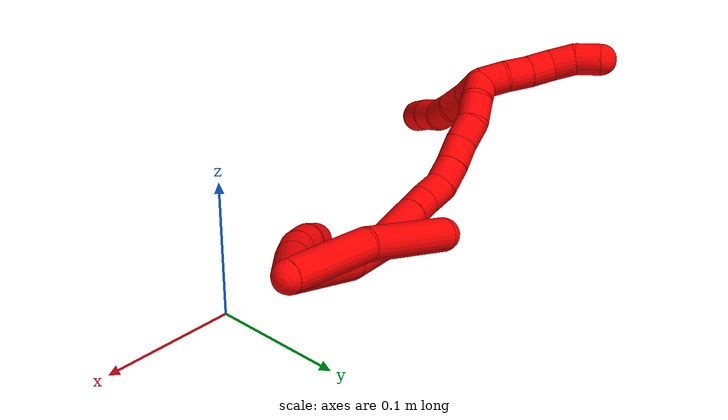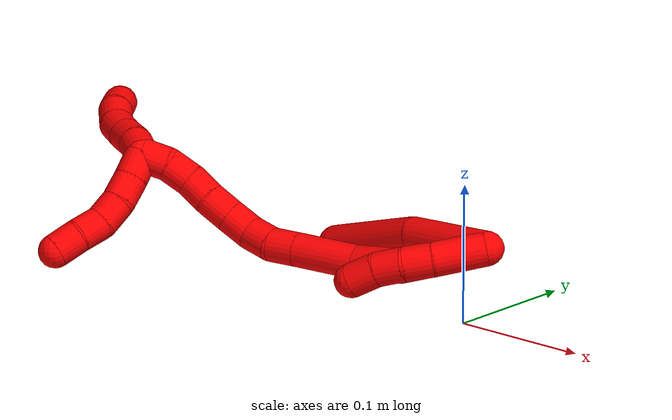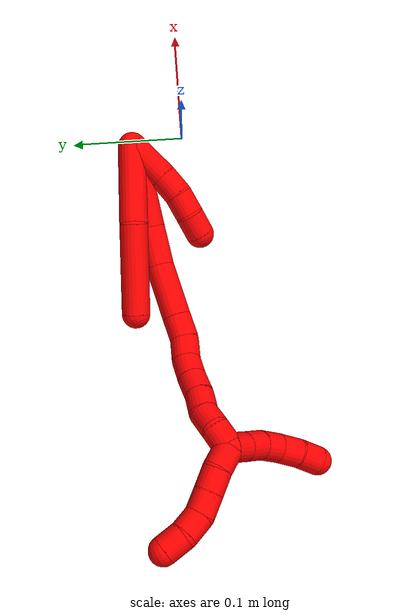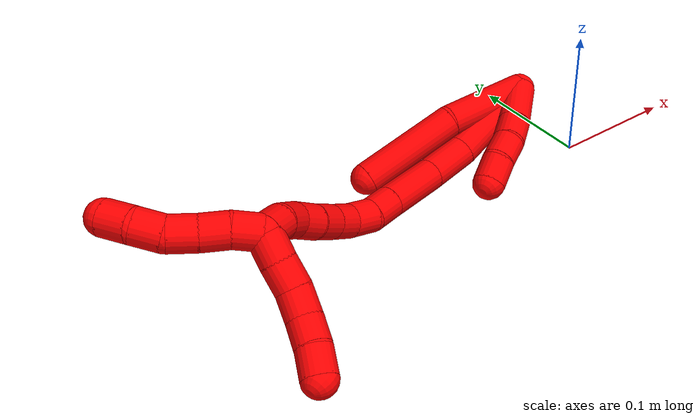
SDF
<sdf version="1.7">
 <world name="default">
  <model name="photoneo_s_sensor">
   <static>1</static>
   <pose>0 0 2 1.57079 1.57079 3.14159</pose>
   <link name="link">
    <inertial><mass>0.1</mass></inertial>
    <sensor name="sensor" type="depth">
     <update_rate>30</update_rate>
     <camera>
      <horizontal_fov>1.22</horizontal_fov>
      <image><width>1920</width><height>1200</height><format>B8G8R8</format></image>
      <clip><near>0.1</near><far>4</far></clip>
      <depth_camera><output>points</output></depth_camera>
     </camera>
     <plugin name="camera_plugin" filename="libgazebo_ros_depth_camera.so">
      <baseline>0.2</baseline>
      <alwaysOn>1</alwaysOn>
      <updateRate>0.0</updateRate>
      <cameraName>camera_ir</cameraName>
      <imageTopicName>/camera/color/image_raw</imageTopicName>
      <cameraInfoTopicName>/camera/color/camera_info</cameraInfoTopicName>
      <depthImageTopicName>/camera/depth/image_raw</depthImageTopicName>
      <depthImageCameraInfoTopicName>/camera/depth/camera_info</depthImageCameraInfoTopicName>
      <pointCloudTopicName>/camera/depth/points</pointCloudTopicName>
      <frameName>fr_optical</frameName>
      <pointCloudCutoff>0.1</pointCloudCutoff>
      <pointCloudCutoffMax>2.0</pointCloudCutoffMax>
      <distortionK1>0</distortionK1>
      <distortionK2>0</distortionK2>
      <distortionK3>0</distortionK3>
      <distortionT1>0</distortionT1>
      <distortionT2>0</distortionT2>
      <CxPrime>0</CxPrime>
      <Cx>0</Cx>
      <Cy>0</Cy>
      <focalLength>0</focalLength>
      <hackBaseline>0</hackBaseline>
     </plugin>
    </sensor>
   </link>
  </model>
  <model name="bin">
   <static>1</static>
   <link name="bottom">
    <collision name="collision-bottom">
     <pose>0 0 -0.01 0 -0 0</pose>
     <geometry><box><size>0.8 0.6 0.02</size></box></geometry>
     <surface>
      <friction><ode><mu>100</mu><mu2>100</mu2></ode></friction>
      <contact><collide_bitmask>65535</collide_bitmask></contact>
     </surface>
    </collision>
   </link>
   <link name="west_wall">
    <collision name="collision-west_wall">
     <pose>-0.41 0 0.1 0 -0 0</pose>
     <geometry><box><size>0.02 0.6 0.2</size></box></geometry>
     <surface>
      <friction><ode><mu>100</mu><mu2>100</mu2></ode></friction>
      <contact><collide_bitmask>65535</collide_bitmask></contact>
     </surface>
    </collision>
   </link>
   <link name="east_wall">
    <collision name="collision-east_wall">
     <pose>0.41 0 0.1 0 -0 0</pose>
     <geometry><box><size>0.02 0.6 0.2</size></box></geometry>
     <surface>
      <friction><ode><mu>100</mu><mu2>100</mu2></ode></friction>
      <contact><collide_bitmask>65535</collide_bitmask></contact>
     </surface>
    </collision>
   </link>
   <link name="south_wall">
    <collision name="collision-south_wall">
     <pose>0 -0.31 0.1 0 -0 0</pose>
     <geometry><box><size>0.8 0.02 0.2</size></box></geometry>
     <surface>
      <friction><ode><mu>100</mu><mu2>100</mu2></ode></friction>
      <contact><collide_bitmask>65535</collide_bitmask></contact>
     </surface>
    </collision>
   </link>
   <link name="north_wall">
    <collision name="collision-north_wall">
     <pose>0 0.31 0.1 0 -0 0</pose>
     <geometry><box><size>0.8 0.02 0.2</size></box></geometry>
     <surface>
      <friction><ode><mu>100</mu><mu2>100</mu2></ode></friction>
      <contact><collide_bitmask>65535</collide_bitmask></contact>
     </surface>
    </collision>
   </link>
  </model>
  <model name="2">
   <static>0</static>
   <link name="2">
    <collision name="collision-cylinder-e_1_2_8">
     <pose>-0.013274 0.008814 0.03118 -0.275487 -0.388816 0.054574</pose>
     <geometry><cylinder><radius>0.0125</radius><length>0.07003</length></cylinder></geometry>
     <surface>
      <friction><ode><mu>1.16</mu><mu2>1.16</mu2><slip1>0</slip1><slip2>0</slip2></ode></friction>
      <contact><ode><kp>1e+06</kp><kd>1</kd><max_vel>0</max_vel><min_depth>0.001</min_depth></ode></contact>
     </surface>
    </collision>
    <visual name="visual-cylinder-e_1_2_8">
     <pose>-0.013274 0.008814 0.03118 -0.275487 -0.388816 0.054574</pose>
     <geometry><cylinder><radius>0.0125</radius><length>0.07003</length></cylinder></geometry>
     <material><ambient>1 0 0 1</ambient></material>
    </visual>
    <collision name="collision-cylinder-e_2_8_6">
     <pose>-0.045615 0.019459 0.097458 -0.052141 -0.497082 0.013236</pose>
     <geometry><cylinder><radius>0.0125</radius><length>0.07997</length></cylinder></geometry>
     <surface>
      <friction><ode><mu>1.16</mu><mu2>1.16</mu2><slip1>0</slip1><slip2>0</slip2></ode></friction>
      <contact><ode><kp>1e+06</kp><kd>1</kd><max_vel>0</max_vel><min_depth>0.001</min_depth></ode></contact>
     </surface>
    </collision>
    <visual name="visual-cylinder-e_2_8_6">
     <pose>-0.045615 0.019459 0.097458 -0.052141 -0.497082 0.013236</pose>
     <geometry><cylinder><radius>0.0125</radius><length>0.07997</length></cylinder></geometry>
     <material><ambient>1 0 0 1</ambient></material>
    </visual>
    <collision name="collision-cylinder-e_1_2_9">
     <pose>0.003988 -0.004711 0.018013 0.255822 0.210982 0.027235</pose>
     <geometry><cylinder><radius>0.0125</radius><length>0.038083</length></cylinder></geometry>
     <surface>
      <friction><ode><mu>1.16</mu><mu2>1.16</mu2><slip1>0</slip1><slip2>0</slip2></ode></friction>
      <contact><ode><kp>1e+06</kp><kd>1</kd><max_vel>0</max_vel><min_depth>0.001</min_depth></ode></contact>
     </surface>
    </collision>
    <visual name="visual-cylinder-e_1_2_9">
     <pose>0.003988 -0.004711 0.018013 0.255822 0.210982 0.027235</pose>
     <geometry><cylinder><radius>0.0125</radius><length>0.038083</length></cylinder></geometry>
     <material><ambient>1 0 0 1</ambient></material>
    </visual>
    <collision name="collision-cylinder-e_2_9_10">
     <pose>0.009513 -0.011331 0.046253 0.184424 0.146737 0.013594</pose>
     <geometry><cylinder><radius>0.0125</radius><length>0.021033</length></cylinder></geometry>
     <surface>
      <friction><ode><mu>1.16</mu><mu2>1.16</mu2><slip1>0</slip1><slip2>0</slip2></ode></friction>
      <contact><ode><kp>1e+06</kp><kd>1</kd><max_vel>0</max_vel><min_depth>0.001</min_depth></ode></contact>
     </surface>
    </collision>
    <visual name="visual-cylinder-e_2_9_10">
     <pose>0.009513 -0.011331 0.046253 0.184424 0.146737 0.013594</pose>
     <geometry><cylinder><radius>0.0125</radius><length>0.021033</length></cylinder></geometry>
     <material><ambient>1 0 0 1</ambient></material>
    </visual>
    <collision name="collision-cylinder-e_3_10_11">
     <pose>0.01051 -0.014886 0.066427 0.16413 -0.053608 -0.00441</pose>
     <geometry><cylinder><radius>0.0125</radius><length>0.020193</length></cylinder></geometry>
     <surface>
      <friction><ode><mu>1.16</mu><mu2>1.16</mu2><slip1>0</slip1><slip2>0</slip2></ode></friction>
      <contact><ode><kp>1e+06</kp><kd>1</kd><max_vel>0</max_vel><min_depth>0.001</min_depth></ode></contact>
     </surface>
    </collision>
    <visual name="visual-cylinder-e_3_10_11">
     <pose>0.01051 -0.014886 0.066427 0.16413 -0.053608 -0.00441</pose>
     <geometry><cylinder><radius>0.0125</radius><length>0.020193</length></cylinder></geometry>
     <material><ambient>1 0 0 1</ambient></material>
    </visual>
    <collision name="collision-cylinder-e_4_11_5">
     <pose>0.00854 -0.020069 0.085991 0.352335 -0.138535 -0.024699</pose>
     <geometry><cylinder><radius>0.0125</radius><length>0.020691</length></cylinder></geometry>
     <surface>
      <friction><ode><mu>1.16</mu><mu2>1.16</mu2><slip1>0</slip1><slip2>0</slip2></ode></friction>
      <contact><ode><kp>1e+06</kp><kd>1</kd><max_vel>0</max_vel><min_depth>0.001</min_depth></ode></contact>
     </surface>
    </collision>
    <visual name="visual-cylinder-e_4_11_5">
     <pose>0.00854 -0.020069 0.085991 0.352335 -0.138535 -0.024699</pose>
     <geometry><cylinder><radius>0.0125</radius><length>0.020691</length></cylinder></geometry>
     <material><ambient>1 0 0 1</ambient></material>
    </visual>
    <collision name="collision-cylinder-e_1_2_12">
     <pose>-0.012213 -0.003079 0.034733 0.08842 -0.336898 -0.015046</pose>
     <geometry><cylinder><radius>0.0125</radius><length>0.073893</length></cylinder></geometry>
     <surface>
      <friction><ode><mu>1.16</mu><mu2>1.16</mu2><slip1>0</slip1><slip2>0</slip2></ode></friction>
      <contact><ode><kp>1e+06</kp><kd>1</kd><max_vel>0</max_vel><min_depth>0.001</min_depth></ode></contact>
     </surface>
    </collision>
    <visual name="visual-cylinder-e_1_2_12">
     <pose>-0.012213 -0.003079 0.034733 0.08842 -0.336898 -0.015046</pose>
     <geometry><cylinder><radius>0.0125</radius><length>0.073893</length></cylinder></geometry>
     <material><ambient>1 0 0 1</ambient></material>
    </visual>
    <collision name="collision-cylinder-e_2_12_13">
     <pose>-0.028516 -0.003731 0.087179 -0.136203 -0.224905 0.015405</pose>
     <geometry><cylinder><radius>0.0125</radius><length>0.03668</length></cylinder></geometry>
     <surface>
      <friction><ode><mu>1.16</mu><mu2>1.16</mu2><slip1>0</slip1><slip2>0</slip2></ode></friction>
      <contact><ode><kp>1e+06</kp><kd>1</kd><max_vel>0</max_vel><min_depth>0.001</min_depth></ode></contact>
     </surface>
    </collision>
    <visual name="visual-cylinder-e_2_12_13">
     <pose>-0.028516 -0.003731 0.087179 -0.136203 -0.224905 0.015405</pose>
     <geometry><cylinder><radius>0.0125</radius><length>0.03668</length></cylinder></geometry>
     <material><ambient>1 0 0 1</ambient></material>
    </visual>
    <collision name="collision-cylinder-e_3_13_14">
     <pose>-0.034579 0.004096 0.128242 -0.227236 -0.082148 0.009379</pose>
     <geometry><cylinder><radius>0.0125</radius><length>0.048094</length></cylinder></geometry>
     <surface>
      <friction><ode><mu>1.16</mu><mu2>1.16</mu2><slip1>0</slip1><slip2>0</slip2></ode></friction>
      <contact><ode><kp>1e+06</kp><kd>1</kd><max_vel>0</max_vel><min_depth>0.001</min_depth></ode></contact>
     </surface>
    </collision>
    <visual name="visual-cylinder-e_3_13_14">
     <pose>-0.034579 0.004096 0.128242 -0.227236 -0.082148 0.009379</pose>
     <geometry><cylinder><radius>0.0125</radius><length>0.048094</length></cylinder></geometry>
     <material><ambient>1 0 0 1</ambient></material>
    </visual>
    <collision name="collision-cylinder-e_4_14_15">
     <pose>-0.037317 0.011676 0.16175 -0.211443 -0.073456 0.007798</pose>
     <geometry><cylinder><radius>0.0125</radius><length>0.020836</length></cylinder></geometry>
     <surface>
      <friction><ode><mu>1.16</mu><mu2>1.16</mu2><slip1>0</slip1><slip2>0</slip2></ode></friction>
      <contact><ode><kp>1e+06</kp><kd>1</kd><max_vel>0</max_vel><min_depth>0.001</min_depth></ode></contact>
     </surface>
    </collision>
    <visual name="visual-cylinder-e_4_14_15">
     <pose>-0.037317 0.011676 0.16175 -0.211443 -0.073456 0.007798</pose>
     <geometry><cylinder><radius>0.0125</radius><length>0.020836</length></cylinder></geometry>
     <material><ambient>1 0 0 1</ambient></material>
    </visual>
    <collision name="collision-cylinder-e_5_15_16">
     <pose>-0.039889 0.018682 0.180648 -0.504565 -0.179072 0.046276</pose>
     <geometry><cylinder><radius>0.0125</radius><length>0.020291</length></cylinder></geometry>
     <surface>
      <friction><ode><mu>1.16</mu><mu2>1.16</mu2><slip1>0</slip1><slip2>0</slip2></ode></friction>
      <contact><ode><kp>1e+06</kp><kd>1</kd><max_vel>0</max_vel><min_depth>0.001</min_depth></ode></contact>
     </surface>
    </collision>
    <visual name="visual-cylinder-e_5_15_16">
     <pose>-0.039889 0.018682 0.180648 -0.504565 -0.179072 0.046276</pose>
     <geometry><cylinder><radius>0.0125</radius><length>0.020291</length></cylinder></geometry>
     <material><ambient>1 0 0 1</ambient></material>
    </visual>
    <collision name="collision-cylinder-e_6_16_17">
     <pose>-0.040365 0.029518 0.197384 -0.644364 0.132247 -0.044203</pose>
     <geometry><cylinder><radius>0.0125</radius><length>0.020183</length></cylinder></geometry>
     <surface>
      <friction><ode><mu>1.16</mu><mu2>1.16</mu2><slip1>0</slip1><slip2>0</slip2></ode></friction>
      <contact><ode><kp>1e+06</kp><kd>1</kd><max_vel>0</max_vel><min_depth>0.001</min_depth></ode></contact>
     </surface>
    </collision>
    <visual name="visual-cylinder-e_6_16_17">
     <pose>-0.040365 0.029518 0.197384 -0.644364 0.132247 -0.044203</pose>
     <geometry><cylinder><radius>0.0125</radius><length>0.020183</length></cylinder></geometry>
     <material><ambient>1 0 0 1</ambient></material>
    </visual>
    <collision name="collision-cylinder-e_7_17_18">
     <pose>-0.036794 0.041581 0.213022 -0.670149 0.225945 -0.07897</pose>
     <geometry><cylinder><radius>0.0125</radius><length>0.020005</length></cylinder></geometry>
     <surface>
      <friction><ode><mu>1.16</mu><mu2>1.16</mu2><slip1>0</slip1><slip2>0</slip2></ode></friction>
      <contact><ode><kp>1e+06</kp><kd>1</kd><max_vel>0</max_vel><min_depth>0.001</min_depth></ode></contact>
     </surface>
    </collision>
    <visual name="visual-cylinder-e_7_17_18">
     <pose>-0.036794 0.041581 0.213022 -0.670149 0.225945 -0.07897</pose>
     <geometry><cylinder><radius>0.0125</radius><length>0.020005</length></cylinder></geometry>
     <material><ambient>1 0 0 1</ambient></material>
    </visual>
    <collision name="collision-cylinder-e_8_18_19">
     <pose>-0.033384 0.054376 0.22796 -0.745643 0.117178 -0.045874</pose>
     <geometry><cylinder><radius>0.0125</radius><length>0.020007</length></cylinder></geometry>
     <surface>
      <friction><ode><mu>1.16</mu><mu2>1.16</mu2><slip1>0</slip1><slip2>0</slip2></ode></friction>
      <contact><ode><kp>1e+06</kp><kd>1</kd><max_vel>0</max_vel><min_depth>0.001</min_depth></ode></contact>
     </surface>
    </collision>
    <visual name="visual-cylinder-e_8_18_19">
     <pose>-0.033384 0.054376 0.22796 -0.745643 0.117178 -0.045874</pose>
     <geometry><cylinder><radius>0.0125</radius><length>0.020007</length></cylinder></geometry>
     <material><ambient>1 0 0 1</ambient></material>
    </visual>
    <collision name="collision-cylinder-e_9_19_20">
     <pose>-0.028403 0.066233 0.242965 -0.586161 0.390813 -0.119318</pose>
     <geometry><cylinder><radius>0.0125</radius><length>0.02001</length></cylinder></geometry>
     <surface>
      <friction><ode><mu>1.16</mu><mu2>1.16</mu2><slip1>0</slip1><slip2>0</slip2></ode></friction>
      <contact><ode><kp>1e+06</kp><kd>1</kd><max_vel>0</max_vel><min_depth>0.001</min_depth></ode></contact>
     </surface>
    </collision>
    <visual name="visual-cylinder-e_9_19_20">
     <pose>-0.028403 0.066233 0.242965 -0.586161 0.390813 -0.119318</pose>
     <geometry><cylinder><radius>0.0125</radius><length>0.02001</length></cylinder></geometry>
     <material><ambient>1 0 0 1</ambient></material>
    </visual>
    <collision name="collision-cylinder-e_10_20_1">
     <pose>-0.021864 0.07423 0.259853 -0.303895 0.276189 -0.042557</pose>
     <geometry><cylinder><radius>0.0125</radius><length>0.020001</length></cylinder></geometry>
     <surface>
      <friction><ode><mu>1.16</mu><mu2>1.16</mu2><slip1>0</slip1><slip2>0</slip2></ode></friction>
      <contact><ode><kp>1e+06</kp><kd>1</kd><max_vel>0</max_vel><min_depth>0.001</min_depth></ode></contact>
     </surface>
    </collision>
    <visual name="visual-cylinder-e_10_20_1">
     <pose>-0.021864 0.07423 0.259853 -0.303895 0.276189 -0.042557</pose>
     <geometry><cylinder><radius>0.0125</radius><length>0.020001</length></cylinder></geometry>
     <material><ambient>1 0 0 1</ambient></material>
    </visual>
    <collision name="collision-cylinder-e_1_1_21">
     <pose>-0.017502 0.067747 0.272144 1.25 0.164296 0.118665</pose>
     <geometry><cylinder><radius>0.0125</radius><length>0.02</length></cylinder></geometry>
     <surface>
      <friction><ode><mu>1.16</mu><mu2>1.16</mu2><slip1>0</slip1><slip2>0</slip2></ode></friction>
      <contact><ode><kp>1e+06</kp><kd>1</kd><max_vel>0</max_vel><min_depth>0.001</min_depth></ode></contact>
     </surface>
    </collision>
    <visual name="visual-cylinder-e_1_1_21">
     <pose>-0.017502 0.067747 0.272144 1.25 0.164296 0.118665</pose>
     <geometry><cylinder><radius>0.0125</radius><length>0.02</length></cylinder></geometry>
     <material><ambient>1 0 0 1</ambient></material>
    </visual>
    <collision name="collision-cylinder-e_2_21_22">
     <pose>-0.013165 0.049285 0.278401 1.23795 0.273495 0.195427</pose>
     <geometry><cylinder><radius>0.0125</radius><length>0.02</length></cylinder></geometry>
     <surface>
      <friction><ode><mu>1.16</mu><mu2>1.16</mu2><slip1>0</slip1><slip2>0</slip2></ode></friction>
      <contact><ode><kp>1e+06</kp><kd>1</kd><max_vel>0</max_vel><min_depth>0.001</min_depth></ode></contact>
     </surface>
    </collision>
    <visual name="visual-cylinder-e_2_21_22">
     <pose>-0.013165 0.049285 0.278401 1.23795 0.273495 0.195427</pose>
     <geometry><cylinder><radius>0.0125</radius><length>0.02</length></cylinder></geometry>
     <material><ambient>1 0 0 1</ambient></material>
    </visual>
    <collision name="collision-cylinder-e_3_22_23">
     <pose>-0.007763 0.031978 0.286581 1.02054 0.273478 0.153727</pose>
     <geometry><cylinder><radius>0.0125</radius><length>0.02</length></cylinder></geometry>
     <surface>
      <friction><ode><mu>1.16</mu><mu2>1.16</mu2><slip1>0</slip1><slip2>0</slip2></ode></friction>
      <contact><ode><kp>1e+06</kp><kd>1</kd><max_vel>0</max_vel><min_depth>0.001</min_depth></ode></contact>
     </surface>
    </collision>
    <visual name="visual-cylinder-e_3_22_23">
     <pose>-0.007763 0.031978 0.286581 1.02054 0.273478 0.153727</pose>
     <geometry><cylinder><radius>0.0125</radius><length>0.02</length></cylinder></geometry>
     <material><ambient>1 0 0 1</ambient></material>
    </visual>
    <collision name="collision-cylinder-e_4_23_24">
     <pose>-0.000325 0.017836 0.298122 0.73953 0.493533 0.194652</pose>
     <geometry><cylinder><radius>0.0125</radius><length>0.02</length></cylinder></geometry>
     <surface>
      <friction><ode><mu>1.16</mu><mu2>1.16</mu2><slip1>0</slip1><slip2>0</slip2></ode></friction>
      <contact><ode><kp>1e+06</kp><kd>1</kd><max_vel>0</max_vel><min_depth>0.001</min_depth></ode></contact>
     </surface>
    </collision>
    <visual name="visual-cylinder-e_4_23_24">
     <pose>-0.000325 0.017836 0.298122 0.73953 0.493533 0.194652</pose>
     <geometry><cylinder><radius>0.0125</radius><length>0.02</length></cylinder></geometry>
     <material><ambient>1 0 0 1</ambient></material>
    </visual>
    <collision name="collision-cylinder-e_5_24_4">
     <pose>0.007746 0.005592 0.311635 0.73301 0.339881 0.131543</pose>
     <geometry><cylinder><radius>0.0125</radius><length>0.02</length></cylinder></geometry>
     <surface>
      <friction><ode><mu>1.16</mu><mu2>1.16</mu2><slip1>0</slip1><slip2>0</slip2></ode></friction>
      <contact><ode><kp>1e+06</kp><kd>1</kd><max_vel>0</max_vel><min_depth>0.001</min_depth></ode></contact>
     </surface>
    </collision>
    <visual name="visual-cylinder-e_5_24_4">
     <pose>0.007746 0.005592 0.311635 0.73301 0.339881 0.131543</pose>
     <geometry><cylinder><radius>0.0125</radius><length>0.02</length></cylinder></geometry>
     <material><ambient>1 0 0 1</ambient></material>
    </visual>
    <collision name="collision-cylinder-e_1_1_25">
     <pose>-0.025154 0.083287 0.274096 -0.884384 -0.645569 0.314121</pose>
     <geometry><cylinder><radius>0.0125</radius><length>0.02</length></cylinder></geometry>
     <surface>
      <friction><ode><mu>1.16</mu><mu2>1.16</mu2><slip1>0</slip1><slip2>0</slip2></ode></friction>
      <contact><ode><kp>1e+06</kp><kd>1</kd><max_vel>0</max_vel><min_depth>0.001</min_depth></ode></contact>
     </surface>
    </collision>
    <visual name="visual-cylinder-e_1_1_25">
     <pose>-0.025154 0.083287 0.274096 -0.884384 -0.645569 0.314121</pose>
     <geometry><cylinder><radius>0.0125</radius><length>0.02</length></cylinder></geometry>
     <material><ambient>1 0 0 1</ambient></material>
    </visual>
    <collision name="collision-cylinder-e_2_25_26">
     <pose>-0.0373 0.094183 0.285497 -0.639675 -0.659788 0.225851</pose>
     <geometry><cylinder><radius>0.0125</radius><length>0.02</length></cylinder></geometry>
     <surface>
      <friction><ode><mu>1.16</mu><mu2>1.16</mu2><slip1>0</slip1><slip2>0</slip2></ode></friction>
      <contact><ode><kp>1e+06</kp><kd>1</kd><max_vel>0</max_vel><min_depth>0.001</min_depth></ode></contact>
     </surface>
    </collision>
    <visual name="visual-cylinder-e_2_25_26">
     <pose>-0.0373 0.094183 0.285497 -0.639675 -0.659788 0.225851</pose>
     <geometry><cylinder><radius>0.0125</radius><length>0.02</length></cylinder></geometry>
     <material><ambient>1 0 0 1</ambient></material>
    </visual>
    <collision name="collision-cylinder-e_3_26_27">
     <pose>-0.049131 0.104377 0.297959 -0.729831 -0.60665 0.238005</pose>
     <geometry><cylinder><radius>0.0125</radius><length>0.02</length></cylinder></geometry>
     <surface>
      <friction><ode><mu>1.16</mu><mu2>1.16</mu2><slip1>0</slip1><slip2>0</slip2></ode></friction>
      <contact><ode><kp>1e+06</kp><kd>1</kd><max_vel>0</max_vel><min_depth>0.001</min_depth></ode></contact>
     </surface>
    </collision>
    <visual name="visual-cylinder-e_3_26_27">
     <pose>-0.049131 0.104377 0.297959 -0.729831 -0.60665 0.238005</pose>
     <geometry><cylinder><radius>0.0125</radius><length>0.02</length></cylinder></geometry>
     <material><ambient>1 0 0 1</ambient></material>
    </visual>
    <collision name="collision-cylinder-e_4_27_28">
     <pose>-0.061303 0.116764 0.307305 -1.13437 -0.703768 0.459514</pose>
     <geometry><cylinder><radius>0.0125</radius><length>0.02</length></cylinder></geometry>
     <surface>
      <friction><ode><mu>1.16</mu><mu2>1.16</mu2><slip1>0</slip1><slip2>0</slip2></ode></friction>
      <contact><ode><kp>1e+06</kp><kd>1</kd><max_vel>0</max_vel><min_depth>0.001</min_depth></ode></contact>
     </surface>
    </collision>
    <visual name="visual-cylinder-e_4_27_28">
     <pose>-0.061303 0.116764 0.307305 -1.13437 -0.703768 0.459514</pose>
     <geometry><cylinder><radius>0.0125</radius><length>0.02</length></cylinder></geometry>
     <material><ambient>1 0 0 1</ambient></material>
    </visual>
    <collision name="collision-cylinder-e_5_28_3">
     <pose>-0.076063 0.129049 0.312073 -1.29076 -0.977193 0.761451</pose>
     <geometry><cylinder><radius>0.0125</radius><length>0.02</length></cylinder></geometry>
     <surface>
      <friction><ode><mu>1.16</mu><mu2>1.16</mu2><slip1>0</slip1><slip2>0</slip2></ode></friction>
      <contact><ode><kp>1e+06</kp><kd>1</kd><max_vel>0</max_vel><min_depth>0.001</min_depth></ode></contact>
     </surface>
    </collision>
    <visual name="visual-cylinder-e_5_28_3">
     <pose>-0.076063 0.129049 0.312073 -1.29076 -0.977193 0.761451</pose>
     <geometry><cylinder><radius>0.0125</radius><length>0.02</length></cylinder></geometry>
     <material><ambient>1 0 0 1</ambient></material>
    </visual>
    <collision name="collision-sphere-3">
     <pose>-0.084352 0.134425 0.313619 0 -0 0</pose>
     <geometry><sphere><radius>0.0125</radius></sphere></geometry>
     <surface>
      <friction><ode><mu>1.16</mu><mu2>1.16</mu2><slip1>0</slip1><slip2>0</slip2></ode></friction>
      <contact><ode><kp>1e+06</kp><kd>1</kd><max_vel>0</max_vel><min_depth>0.001</min_depth></ode></contact>
     </surface>
    </collision>
    <visual name="visual-sphere-3">
     <pose>-0.084352 0.134425 0.313619 0 -0 0</pose>
     <geometry><sphere><radius>0.0125</radius></sphere></geometry>
     <material><ambient>1 0 0 1</ambient></material>
    </visual>
    <collision name="collision-sphere-28">
     <pose>-0.067774 0.123673 0.310527 0 -0 0</pose>
     <geometry><sphere><radius>0.0125</radius></sphere></geometry>
     <surface>
      <friction><ode><mu>1.16</mu><mu2>1.16</mu2><slip1>0</slip1><slip2>0</slip2></ode></friction>
      <contact><ode><kp>1e+06</kp><kd>1</kd><max_vel>0</max_vel><min_depth>0.001</min_depth></ode></contact>
     </surface>
    </collision>
    <visual name="visual-sphere-28">
     <pose>-0.067774 0.123673 0.310527 0 -0 0</pose>
     <geometry><sphere><radius>0.0125</radius></sphere></geometry>
     <material><ambient>1 0 0 1</ambient></material>
    </visual>
    <collision name="collision-sphere-27">
     <pose>-0.054832 0.109854 0.304082 0 -0 0</pose>
     <geometry><sphere><radius>0.0125</radius></sphere></geometry>
     <surface>
      <friction><ode><mu>1.16</mu><mu2>1.16</mu2><slip1>0</slip1><slip2>0</slip2></ode></friction>
      <contact><ode><kp>1e+06</kp><kd>1</kd><max_vel>0</max_vel><min_depth>0.001</min_depth></ode></contact>
     </surface>
    </collision>
    <visual name="visual-sphere-27">
     <pose>-0.054832 0.109854 0.304082 0 -0 0</pose>
     <geometry><sphere><radius>0.0125</radius></sphere></geometry>
     <material><ambient>1 0 0 1</ambient></material>
    </visual>
    <collision name="collision-sphere-26">
     <pose>-0.043429 0.098899 0.291836 0 -0 0</pose>
     <geometry><sphere><radius>0.0125</radius></sphere></geometry>
     <surface>
      <friction><ode><mu>1.16</mu><mu2>1.16</mu2><slip1>0</slip1><slip2>0</slip2></ode></friction>
      <contact><ode><kp>1e+06</kp><kd>1</kd><max_vel>0</max_vel><min_depth>0.001</min_depth></ode></contact>
     </surface>
    </collision>
    <visual name="visual-sphere-26">
     <pose>-0.043429 0.098899 0.291836 0 -0 0</pose>
     <geometry><sphere><radius>0.0125</radius></sphere></geometry>
     <material><ambient>1 0 0 1</ambient></material>
    </visual>
    <collision name="collision-sphere-25">
     <pose>-0.03117 0.089466 0.279158 0 -0 0</pose>
     <geometry><sphere><radius>0.0125</radius></sphere></geometry>
     <surface>
      <friction><ode><mu>1.16</mu><mu2>1.16</mu2><slip1>0</slip1><slip2>0</slip2></ode></friction>
      <contact><ode><kp>1e+06</kp><kd>1</kd><max_vel>0</max_vel><min_depth>0.001</min_depth></ode></contact>
     </surface>
    </collision>
    <visual name="visual-sphere-25">
     <pose>-0.03117 0.089466 0.279158 0 -0 0</pose>
     <geometry><sphere><radius>0.0125</radius></sphere></geometry>
     <material><ambient>1 0 0 1</ambient></material>
    </visual>
    <collision name="collision-sphere-4">
     <pose>0.01108 -0.000716 0.318642 0 -0 0</pose>
     <geometry><sphere><radius>0.0125</radius></sphere></geometry>
     <surface>
      <friction><ode><mu>1.16</mu><mu2>1.16</mu2><slip1>0</slip1><slip2>0</slip2></ode></friction>
      <contact><ode><kp>1e+06</kp><kd>1</kd><max_vel>0</max_vel><min_depth>0.001</min_depth></ode></contact>
     </surface>
    </collision>
    <visual name="visual-sphere-4">
     <pose>0.01108 -0.000716 0.318642 0 -0 0</pose>
     <geometry><sphere><radius>0.0125</radius></sphere></geometry>
     <material><ambient>1 0 0 1</ambient></material>
    </visual>
    <collision name="collision-sphere-24">
     <pose>0.004412 0.0119 0.304629 0 -0 0</pose>
     <geometry><sphere><radius>0.0125</radius></sphere></geometry>
     <surface>
      <friction><ode><mu>1.16</mu><mu2>1.16</mu2><slip1>0</slip1><slip2>0</slip2></ode></friction>
      <contact><ode><kp>1e+06</kp><kd>1</kd><max_vel>0</max_vel><min_depth>0.001</min_depth></ode></contact>
     </surface>
    </collision>
    <visual name="visual-sphere-24">
     <pose>0.004412 0.0119 0.304629 0 -0 0</pose>
     <geometry><sphere><radius>0.0125</radius></sphere></geometry>
     <material><ambient>1 0 0 1</ambient></material>
    </visual>
    <collision name="collision-sphere-23">
     <pose>-0.005063 0.023771 0.291616 0 -0 0</pose>
     <geometry><sphere><radius>0.0125</radius></sphere></geometry>
     <surface>
      <friction><ode><mu>1.16</mu><mu2>1.16</mu2><slip1>0</slip1><slip2>0</slip2></ode></friction>
      <contact><ode><kp>1e+06</kp><kd>1</kd><max_vel>0</max_vel><min_depth>0.001</min_depth></ode></contact>
     </surface>
    </collision>
    <visual name="visual-sphere-23">
     <pose>-0.005063 0.023771 0.291616 0 -0 0</pose>
     <geometry><sphere><radius>0.0125</radius></sphere></geometry>
     <material><ambient>1 0 0 1</ambient></material>
    </visual>
    <collision name="collision-sphere-22">
     <pose>-0.010464 0.040185 0.281547 0 -0 0</pose>
     <geometry><sphere><radius>0.0125</radius></sphere></geometry>
     <surface>
      <friction><ode><mu>1.16</mu><mu2>1.16</mu2><slip1>0</slip1><slip2>0</slip2></ode></friction>
      <contact><ode><kp>1e+06</kp><kd>1</kd><max_vel>0</max_vel><min_depth>0.001</min_depth></ode></contact>
     </surface>
    </collision>
    <visual name="visual-sphere-22">
     <pose>-0.010464 0.040185 0.281547 0 -0 0</pose>
     <geometry><sphere><radius>0.0125</radius></sphere></geometry>
     <material><ambient>1 0 0 1</ambient></material>
    </visual>
    <collision name="collision-sphere-21">
     <pose>-0.015866 0.058385 0.275255 0 -0 0</pose>
     <geometry><sphere><radius>0.0125</radius></sphere></geometry>
     <surface>
      <friction><ode><mu>1.16</mu><mu2>1.16</mu2><slip1>0</slip1><slip2>0</slip2></ode></friction>
      <contact><ode><kp>1e+06</kp><kd>1</kd><max_vel>0</max_vel><min_depth>0.001</min_depth></ode></contact>
     </surface>
    </collision>
    <visual name="visual-sphere-21">
     <pose>-0.015866 0.058385 0.275255 0 -0 0</pose>
     <geometry><sphere><radius>0.0125</radius></sphere></geometry>
     <material><ambient>1 0 0 1</ambient></material>
    </visual>
    <collision name="collision-sphere-1">
     <pose>-0.019137 0.077109 0.269033 0 -0 0</pose>
     <geometry><sphere><radius>0.0125</radius></sphere></geometry>
     <surface>
      <friction><ode><mu>1.16</mu><mu2>1.16</mu2><slip1>0</slip1><slip2>0</slip2></ode></friction>
      <contact><ode><kp>1e+06</kp><kd>1</kd><max_vel>0</max_vel><min_depth>0.001</min_depth></ode></contact>
     </surface>
    </collision>
    <visual name="visual-sphere-1">
     <pose>-0.019137 0.077109 0.269033 0 -0 0</pose>
     <geometry><sphere><radius>0.0125</radius></sphere></geometry>
     <material><ambient>1 0 0 1</ambient></material>
    </visual>
    <collision name="collision-sphere-11">
     <pose>0.009969 -0.016533 0.076374 0 -0 0</pose>
     <geometry><sphere><radius>0.0125</radius></sphere></geometry>
     <surface>
      <friction><ode><mu>1.16</mu><mu2>1.16</mu2><slip1>0</slip1><slip2>0</slip2></ode></friction>
      <contact><ode><kp>1e+06</kp><kd>1</kd><max_vel>0</max_vel><min_depth>0.001</min_depth></ode></contact>
     </surface>
    </collision>
    <visual name="visual-sphere-11">
     <pose>0.009969 -0.016533 0.076374 0 -0 0</pose>
     <geometry><sphere><radius>0.0125</radius></sphere></geometry>
     <material><ambient>1 0 0 1</ambient></material>
    </visual>
    <collision name="collision-sphere-10">
     <pose>0.011051 -0.013238 0.056481 0 -0 0</pose>
     <geometry><sphere><radius>0.0125</radius></sphere></geometry>
     <surface>
      <friction><ode><mu>1.16</mu><mu2>1.16</mu2><slip1>0</slip1><slip2>0</slip2></ode></friction>
      <contact><ode><kp>1e+06</kp><kd>1</kd><max_vel>0</max_vel><min_depth>0.001</min_depth></ode></contact>
     </surface>
    </collision>
    <visual name="visual-sphere-10">
     <pose>0.011051 -0.013238 0.056481 0 -0 0</pose>
     <geometry><sphere><radius>0.0125</radius></sphere></geometry>
     <material><ambient>1 0 0 1</ambient></material>
    </visual>
    <collision name="collision-sphere-6">
     <pose>-0.064683 0.021291 0.132556 0 -0 0</pose>
     <geometry><sphere><radius>0.0125</radius></sphere></geometry>
     <surface>
      <friction><ode><mu>1.16</mu><mu2>1.16</mu2><slip1>0</slip1><slip2>0</slip2></ode></friction>
      <contact><ode><kp>1e+06</kp><kd>1</kd><max_vel>0</max_vel><min_depth>0.001</min_depth></ode></contact>
     </surface>
    </collision>
    <visual name="visual-sphere-6">
     <pose>-0.064683 0.021291 0.132556 0 -0 0</pose>
     <geometry><sphere><radius>0.0125</radius></sphere></geometry>
     <material><ambient>1 0 0 1</ambient></material>
    </visual>
    <collision name="collision-sphere-9">
     <pose>0.007975 -0.009423 0.036026 0 -0 0</pose>
     <geometry><sphere><radius>0.0125</radius></sphere></geometry>
     <surface>
      <friction><ode><mu>1.16</mu><mu2>1.16</mu2><slip1>0</slip1><slip2>0</slip2></ode></friction>
      <contact><ode><kp>1e+06</kp><kd>1</kd><max_vel>0</max_vel><min_depth>0.001</min_depth></ode></contact>
     </surface>
    </collision>
    <visual name="visual-sphere-9">
     <pose>0.007975 -0.009423 0.036026 0 -0 0</pose>
     <geometry><sphere><radius>0.0125</radius></sphere></geometry>
     <material><ambient>1 0 0 1</ambient></material>
    </visual>
    <collision name="collision-sphere-2">
     <geometry><sphere><radius>0.0125</radius></sphere></geometry>
     <surface>
      <friction><ode><mu>1.16</mu><mu2>1.16</mu2><slip1>0</slip1><slip2>0</slip2></ode></friction>
      <contact><ode><kp>1e+06</kp><kd>1</kd><max_vel>0</max_vel><min_depth>0.001</min_depth></ode></contact>
     </surface>
    </collision>
    <visual name="visual-sphere-2">
     <geometry><sphere><radius>0.0125</radius></sphere></geometry>
     <material><ambient>1 0 0 1</ambient></material>
    </visual>
    <collision name="collision-sphere-19">
     <pose>-0.032214 0.061116 0.235259 0 -0 0</pose>
     <geometry><sphere><radius>0.0125</radius></sphere></geometry>
     <surface>
      <friction><ode><mu>1.16</mu><mu2>1.16</mu2><slip1>0</slip1><slip2>0</slip2></ode></friction>
      <contact><ode><kp>1e+06</kp><kd>1</kd><max_vel>0</max_vel><min_depth>0.001</min_depth></ode></contact>
     </surface>
    </collision>
    <visual name="visual-sphere-19">
     <pose>-0.032214 0.061116 0.235259 0 -0 0</pose>
     <geometry><sphere><radius>0.0125</radius></sphere></geometry>
     <material><ambient>1 0 0 1</ambient></material>
    </visual>
    <collision name="collision-sphere-8">
     <pose>-0.026548 0.017627 0.06236 0 -0 0</pose>
     <geometry><sphere><radius>0.0125</radius></sphere></geometry>
     <surface>
      <friction><ode><mu>1.16</mu><mu2>1.16</mu2><slip1>0</slip1><slip2>0</slip2></ode></friction>
      <contact><ode><kp>1e+06</kp><kd>1</kd><max_vel>0</max_vel><min_depth>0.001</min_depth></ode></contact>
     </surface>
    </collision>
    <visual name="visual-sphere-8">
     <pose>-0.026548 0.017627 0.06236 0 -0 0</pose>
     <geometry><sphere><radius>0.0125</radius></sphere></geometry>
     <material><ambient>1 0 0 1</ambient></material>
    </visual>
    <collision name="collision-sphere-5">
     <pose>0.007111 -0.023605 0.095608 0 -0 0</pose>
     <geometry><sphere><radius>0.0125</radius></sphere></geometry>
     <surface>
      <friction><ode><mu>1.16</mu><mu2>1.16</mu2><slip1>0</slip1><slip2>0</slip2></ode></friction>
      <contact><ode><kp>1e+06</kp><kd>1</kd><max_vel>0</max_vel><min_depth>0.001</min_depth></ode></contact>
     </surface>
    </collision>
    <visual name="visual-sphere-5">
     <pose>0.007111 -0.023605 0.095608 0 -0 0</pose>
     <geometry><sphere><radius>0.0125</radius></sphere></geometry>
     <material><ambient>1 0 0 1</ambient></material>
    </visual>
    <collision name="collision-sphere-12">
     <pose>-0.024426 -0.006158 0.069466 0 -0 0</pose>
     <geometry><sphere><radius>0.0125</radius></sphere></geometry>
     <surface>
      <friction><ode><mu>1.16</mu><mu2>1.16</mu2><slip1>0</slip1><slip2>0</slip2></ode></friction>
      <contact><ode><kp>1e+06</kp><kd>1</kd><max_vel>0</max_vel><min_depth>0.001</min_depth></ode></contact>
     </surface>
    </collision>
    <visual name="visual-sphere-12">
     <pose>-0.024426 -0.006158 0.069466 0 -0 0</pose>
     <geometry><sphere><radius>0.0125</radius></sphere></geometry>
     <material><ambient>1 0 0 1</ambient></material>
    </visual>
    <collision name="collision-sphere-13">
     <pose>-0.032606 -0.001303 0.104892 0 -0 0</pose>
     <geometry><sphere><radius>0.0125</radius></sphere></geometry>
     <surface>
      <friction><ode><mu>1.16</mu><mu2>1.16</mu2><slip1>0</slip1><slip2>0</slip2></ode></friction>
      <contact><ode><kp>1e+06</kp><kd>1</kd><max_vel>0</max_vel><min_depth>0.001</min_depth></ode></contact>
     </surface>
    </collision>
    <visual name="visual-sphere-13">
     <pose>-0.032606 -0.001303 0.104892 0 -0 0</pose>
     <geometry><sphere><radius>0.0125</radius></sphere></geometry>
     <material><ambient>1 0 0 1</ambient></material>
    </visual>
    <collision name="collision-sphere-14">
     <pose>-0.036553 0.009495 0.151592 0 -0 0</pose>
     <geometry><sphere><radius>0.0125</radius></sphere></geometry>
     <surface>
      <friction><ode><mu>1.16</mu><mu2>1.16</mu2><slip1>0</slip1><slip2>0</slip2></ode></friction>
      <contact><ode><kp>1e+06</kp><kd>1</kd><max_vel>0</max_vel><min_depth>0.001</min_depth></ode></contact>
     </surface>
    </collision>
    <visual name="visual-sphere-14">
     <pose>-0.036553 0.009495 0.151592 0 -0 0</pose>
     <geometry><sphere><radius>0.0125</radius></sphere></geometry>
     <material><ambient>1 0 0 1</ambient></material>
    </visual>
    <collision name="collision-sphere-15">
     <pose>-0.038082 0.013856 0.171908 0 -0 0</pose>
     <geometry><sphere><radius>0.0125</radius></sphere></geometry>
     <surface>
      <friction><ode><mu>1.16</mu><mu2>1.16</mu2><slip1>0</slip1><slip2>0</slip2></ode></friction>
      <contact><ode><kp>1e+06</kp><kd>1</kd><max_vel>0</max_vel><min_depth>0.001</min_depth></ode></contact>
     </surface>
    </collision>
    <visual name="visual-sphere-15">
     <pose>-0.038082 0.013856 0.171908 0 -0 0</pose>
     <geometry><sphere><radius>0.0125</radius></sphere></geometry>
     <material><ambient>1 0 0 1</ambient></material>
    </visual>
    <collision name="collision-sphere-16">
     <pose>-0.041696 0.023509 0.189387 0 -0 0</pose>
     <geometry><sphere><radius>0.0125</radius></sphere></geometry>
     <surface>
      <friction><ode><mu>1.16</mu><mu2>1.16</mu2><slip1>0</slip1><slip2>0</slip2></ode></friction>
      <contact><ode><kp>1e+06</kp><kd>1</kd><max_vel>0</max_vel><min_depth>0.001</min_depth></ode></contact>
     </surface>
    </collision>
    <visual name="visual-sphere-16">
     <pose>-0.041696 0.023509 0.189387 0 -0 0</pose>
     <geometry><sphere><radius>0.0125</radius></sphere></geometry>
     <material><ambient>1 0 0 1</ambient></material>
    </visual>
    <collision name="collision-sphere-17">
     <pose>-0.039035 0.035527 0.205382 0 -0 0</pose>
     <geometry><sphere><radius>0.0125</radius></sphere></geometry>
     <surface>
      <friction><ode><mu>1.16</mu><mu2>1.16</mu2><slip1>0</slip1><slip2>0</slip2></ode></friction>
      <contact><ode><kp>1e+06</kp><kd>1</kd><max_vel>0</max_vel><min_depth>0.001</min_depth></ode></contact>
     </surface>
    </collision>
    <visual name="visual-sphere-17">
     <pose>-0.039035 0.035527 0.205382 0 -0 0</pose>
     <geometry><sphere><radius>0.0125</radius></sphere></geometry>
     <material><ambient>1 0 0 1</ambient></material>
    </visual>
    <collision name="collision-sphere-18">
     <pose>-0.034553 0.047636 0.220662 0 -0 0</pose>
     <geometry><sphere><radius>0.0125</radius></sphere></geometry>
     <surface>
      <friction><ode><mu>1.16</mu><mu2>1.16</mu2><slip1>0</slip1><slip2>0</slip2></ode></friction>
      <contact><ode><kp>1e+06</kp><kd>1</kd><max_vel>0</max_vel><min_depth>0.001</min_depth></ode></contact>
     </surface>
    </collision>
    <visual name="visual-sphere-18">
     <pose>-0.034553 0.047636 0.220662 0 -0 0</pose>
     <geometry><sphere><radius>0.0125</radius></sphere></geometry>
     <material><ambient>1 0 0 1</ambient></material>
    </visual>
    <collision name="collision-sphere-20">
     <pose>-0.024591 0.071351 0.250672 0 -0 0</pose>
     <geometry><sphere><radius>0.0125</radius></sphere></geometry>
     <surface>
      <friction><ode><mu>1.16</mu><mu2>1.16</mu2><slip1>0</slip1><slip2>0</slip2></ode></friction>
      <contact><ode><kp>1e+06</kp><kd>1</kd><max_vel>0</max_vel><min_depth>0.001</min_depth></ode></contact>
     </surface>
    </collision>
    <visual name="visual-sphere-20">
     <pose>-0.024591 0.071351 0.250672 0 -0 0</pose>
     <geometry><sphere><radius>0.0125</radius></sphere></geometry>
     <material><ambient>1 0 0 1</ambient></material>
    </visual>
    <inertial>
     <pose>-0.023811 0.027763 0.153421 0 -0 0</pose>
     <mass>0.75</mass>
     <inertia>
      <ixx>0.000148</ixx>
      <ixy>0</ixy>
      <ixz>0</ixz>
      <iyy>0.000166</iyy>
      <iyz>0</iyz>
      <izz>8.3e-05</izz>
     </inertia>
    </inertial>
   </link>
   <pose>-0.017518 0.045154 0.040305 1.68969 -0.513918 -1.19819</pose>
  </model>
 </world>
</sdf>
